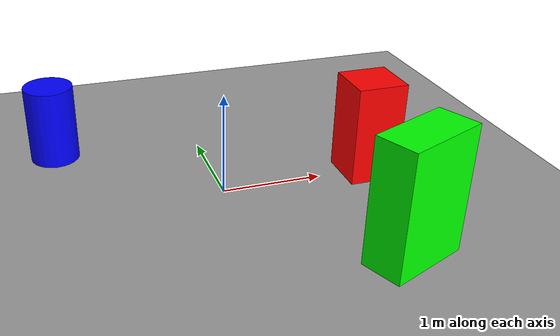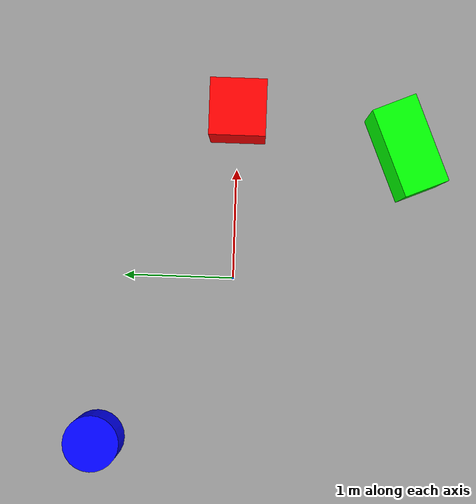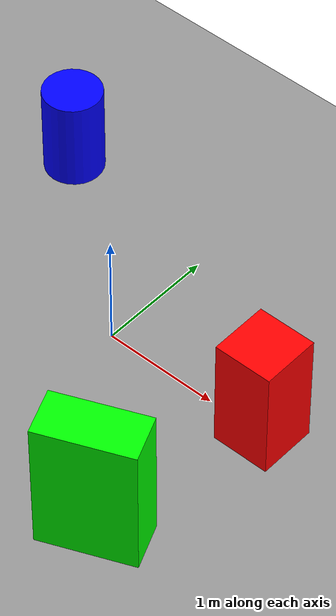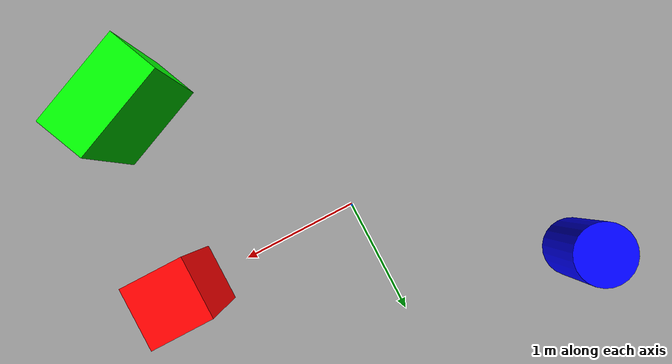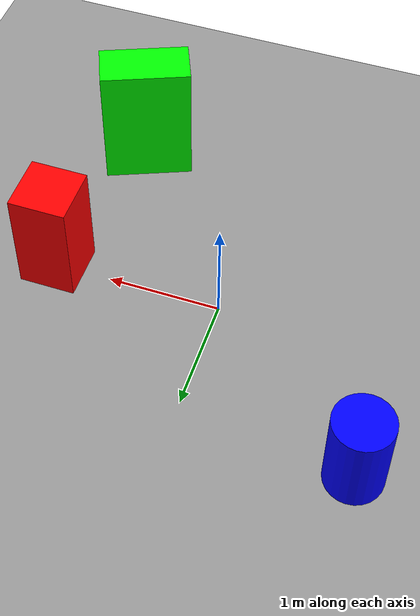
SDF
<?xml version="1.0" ?>
<sdf version="1.9">
  <world name="go2_basic">

    <physics name="1ms" type="ignored">
      <max_step_size>0.001</max_step_size>
      <real_time_factor>1.0</real_time_factor>
    </physics>

    <!-- Explicit system loading so sensors and physics run even in server mode. -->
    <plugin filename="gz-sim-physics-system" name="gz::sim::systems::Physics">
      <engine>dartsim</engine>
    </plugin>
    <plugin filename="gz-sim-sensors-system" name="gz::sim::systems::Sensors"/>
    <plugin filename="gz-sim-scene-broadcaster-system" name="gz::sim::systems::SceneBroadcaster"/>
    <plugin filename="gz-sim-user-commands-system" name="gz::sim::systems::UserCommands"/>

    <!-- Directional sun so RGB/depth cameras and lidar have light and returns. -->
    <light type="directional" name="sun">
      <cast_shadows>true</cast_shadows>
      <pose>0 0 10 0 0 0</pose>
      <diffuse>0.8 0.8 0.8 1</diffuse>
      <specular>0.2 0.2 0.2 1</specular>
      <attenuation>
        <range>1000</range>
        <constant>0.9</constant>
        <linear>0.01</linear>
        <quadratic>0.001</quadratic>
      </attenuation>
      <direction>-0.5 0.1 -0.9</direction>
    </light>

    <model name="ground_plane">
      <static>true</static>
      <link name="link">
        <collision name="collision">
          <geometry><plane><normal>0 0 1</normal><size>100 100</size></plane></geometry>
        </collision>
        <visual name="visual">
          <geometry><plane><normal>0 0 1</normal><size>100 100</size></plane></geometry>
          <material>
            <ambient>0.5 0.5 0.5 1</ambient>
            <diffuse>0.6 0.6 0.6 1</diffuse>
          </material>
        </visual>
      </link>
    </model>

    <!-- Obstacles around the spawn point so the 360 lidar and cameras have returns. -->
    <model name="obstacle_box_front">
      <static>true</static>
      <pose>1.5 0 0.5 0 0 0</pose>
      <link name="link">
        <collision name="collision"><geometry><box><size>0.5 0.5 1.0</size></box></geometry></collision>
        <visual name="visual">
          <geometry><box><size>0.5 0.5 1.0</size></box></geometry>
          <material><ambient>1 0 0 1</ambient><diffuse>1 0 0 1</diffuse></material>
        </visual>
      </link>
    </model>

    <model name="obstacle_cylinder_left">
      <static>true</static>
      <pose>-1.5 1.2 0.4 0 0 0</pose>
      <link name="link">
        <collision name="collision"><geometry><cylinder><radius>0.25</radius><length>0.8</length></cylinder></geometry></collision>
        <visual name="visual">
          <geometry><cylinder><radius>0.25</radius><length>0.8</length></cylinder></geometry>
          <material><ambient>0 0 1 1</ambient><diffuse>0 0 1 1</diffuse></material>
        </visual>
      </link>
    </model>

    <model name="obstacle_box_right">
      <static>true</static>
      <pose>1.2 -1.5 0.6 0 0 0.4</pose>
      <link name="link">
        <collision name="collision"><geometry><box><size>0.8 0.4 1.2</size></box></geometry></collision>
        <visual name="visual">
          <geometry><box><size>0.8 0.4 1.2</size></box></geometry>
          <material><ambient>0 1 0 1</ambient><diffuse>0 1 0 1</diffuse></material>
        </visual>
      </link>
    </model>

  </world>
</sdf>
